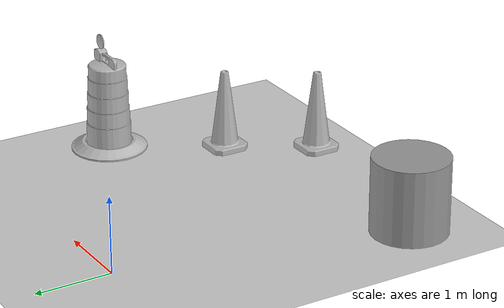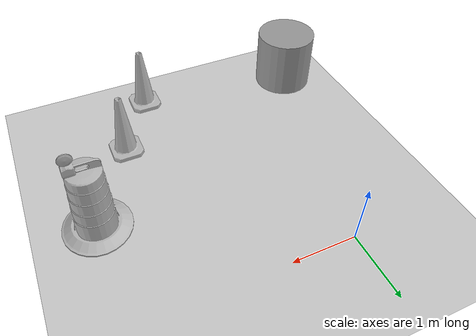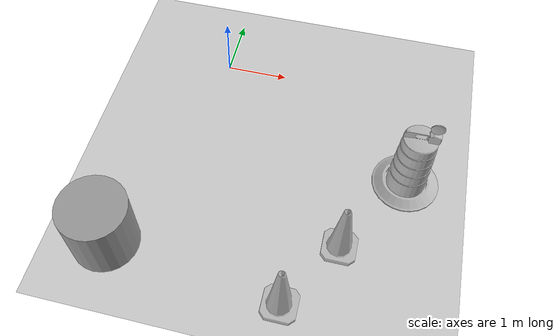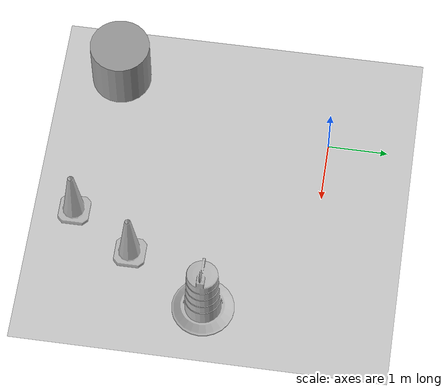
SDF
<sdf version="1.7">
 <world name="default">
  <light name="sun" type="directional">
   <pose>0 0 10 0 -0 0</pose>
   <diffuse>0.8 0.8 0.8 1</diffuse>
   <specular>0.2 0.2 0.2 1</specular>
   <attenuation>
    <range>1000</range>
    <constant>0.9</constant>
    <linear>0.01</linear>
    <quadratic>0.001</quadratic>
   </attenuation>
   <direction>-0.5 0.1 -0.9</direction>
   <spot><inner_angle>0</inner_angle><outer_angle>0</outer_angle><falloff>0</falloff></spot>
  </light>
  <model name="ground_plane">
   <static>1</static>
   <link name="link">
    <collision name="collision">
     <geometry><plane><normal>0 0 1</normal><size>100 100</size></plane></geometry>
     <surface><friction><ode><mu>100</mu><mu2>50</mu2></ode></friction></surface>
    </collision>
    <visual name="visual">
     <cast_shadows>0</cast_shadows>
     <geometry><plane><normal>0 0 1</normal><size>100 100</size></plane></geometry>
     <material>
      <script><uri>file://media/materials/scripts/gazebo.material</uri><name>Gazebo/Grey</name></script>
     </material>
    </visual>
   </link>
  </model>
  <gravity>0 0 -9.8</gravity>
  <magnetic_field>6e-06 2.3e-05 -4.2e-05</magnetic_field>
  <atmosphere type="adiabatic"/>
  <physics type="ode">
   <max_step_size>0.001</max_step_size>
   <real_time_factor>1</real_time_factor>
   <real_time_update_rate>1000</real_time_update_rate>
  </physics>
  <scene><ambient>0.4 0.4 0.4 1</ambient><background>0.7 0.7 0.7 1</background><shadows>1</shadows></scene>
  <audio><device>default</device></audio>
  <spherical_coordinates>
   <surface_model>EARTH_WGS84</surface_model>
   <latitude_deg>0</latitude_deg>
   <longitude_deg>0</longitude_deg>
   <elevation>0</elevation>
   <heading_deg>0</heading_deg>
  </spherical_coordinates>
  <model name="Construction Cone">
   <link name="link">
    <collision name="collision">
     <geometry>
      <mesh><scale>10 10 10</scale><uri>model://construction_cone/meshes/construction_cone.dae</uri></mesh>
     </geometry>
    </collision>
    <visual name="visual">
     <geometry>
      <mesh><scale>10 10 10</scale><uri>model://construction_cone/meshes/construction_cone.dae</uri></mesh>
     </geometry>
    </visual>
    <inertial>
     <inertia><ixx>1</ixx><ixy>0</ixy><ixz>0</ixz><iyy>1</iyy><iyz>0</iyz><izz>1</izz></inertia>
     <mass>1</mass>
    </inertial>
   </link>
   <pose>1.79242 -4.00633 -1e-05 -1e-06 0 0</pose>
  </model>
  <model name="Construction Cone_0">
   <link name="link">
    <collision name="collision">
     <geometry>
      <mesh><scale>10 10 10</scale><uri>model://construction_cone/meshes/construction_cone.dae</uri></mesh>
     </geometry>
    </collision>
    <visual name="visual">
     <geometry>
      <mesh><scale>10 10 10</scale><uri>model://construction_cone/meshes/construction_cone.dae</uri></mesh>
     </geometry>
    </visual>
    <inertial>
     <inertia><ixx>1</ixx><ixy>0</ixy><ixz>0</ixz><iyy>1</iyy><iyz>0</iyz><izz>1</izz></inertia>
     <mass>1</mass>
    </inertial>
   </link>
   <pose>2.44162 -2.97043 -0 0 -0 0</pose>
  </model>
  <model name="Construction Barrel">
   <link name="link">
    <inertial>
     <pose>0 0 0.4 0 -0 0</pose>
     <mass>500</mass>
     <inertia><ixx>51.2096</ixx><iyy>51.2096</iyy><izz>25</izz><ixy>0</ixy><ixz>0</ixz><iyz>0</iyz></inertia>
    </inertial>
    <collision name="collision">
     <geometry><mesh><uri>model://construction_barrel/meshes/construction_barrel.dae</uri></mesh></geometry>
    </collision>
    <visual name="visual">
     <geometry><mesh><uri>model://construction_barrel/meshes/construction_barrel.dae</uri></mesh></geometry>
    </visual>
   </link>
   <pose>3.24943 -1.65127 -2e-06 0 7e-06 -7e-06</pose>
  </model>
  <model name="unit_cylinder">
   <pose>-0.874505 -3.64758 0.499997 3e-06 4e-06 -0</pose>
   <link name="link">
    <inertial>
     <mass>1</mass>
     <inertia><ixx>0.145833</ixx><ixy>0</ixy><ixz>0</ixz><iyy>0.145833</iyy><iyz>0</iyz><izz>0.125</izz></inertia>
    </inertial>
    <collision name="collision">
     <geometry><cylinder><radius>0.5</radius><length>1</length></cylinder></geometry>
    </collision>
    <visual name="visual">
     <geometry><cylinder><radius>0.5</radius><length>1</length></cylinder></geometry>
     <material>
      <script><name>Gazebo/Grey</name><uri>file://media/materials/scripts/gazebo.material</uri></script>
     </material>
    </visual>
   </link>
  </model>
 </world>
</sdf>
